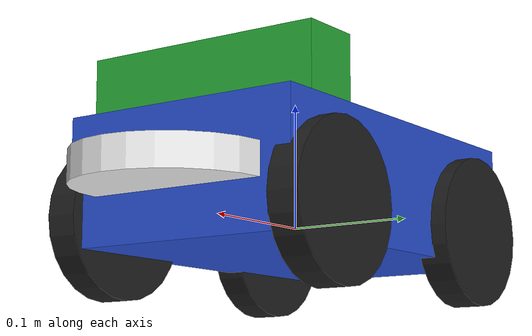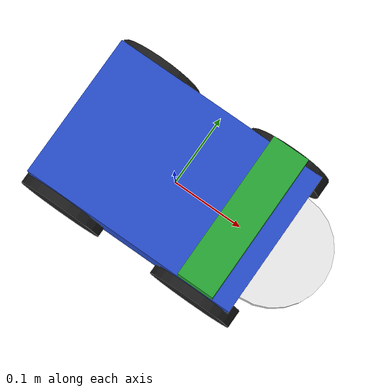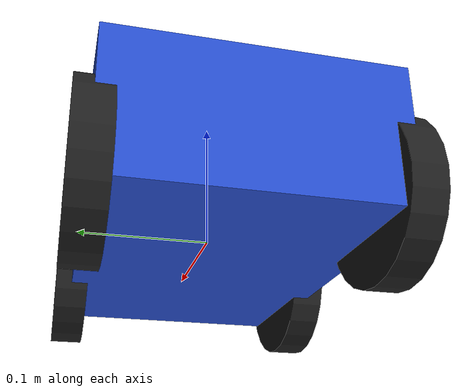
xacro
<?xml version="1.0"?>

<robot name="my_fancy_car" xmlns:xacro="http://www.ros.org/xacro">
  <xacro:include filename = "inertia.xacro"/>
  <xacro:include filename = "macros.xacro"/>
  <xacro:include filename = "gazebo_plugin.xacro"/>

    <!-- ************************ Base Link ******************************** -->
   <link name = "base_link">
    <pose>0 0 0.1 0 0 0</pose>
    <visual>
        <origin xyz="0 0 0.025" rpy="0 0 0" />
        <geometry>
            <box size = "0.3 0.2 0.1"/>
        </geometry>
    </visual>
    <collision>
      <geometry>
            <box size = "0.3 0.2 0.1"/>
        </geometry>
    </collision>
    <inertial>
      <origin xyz="0 0 0" rpy="0 0 0" />
      <mass value="1"/>
      <xacro:box_inertia mass="1" x="0.3" y="0.2" z="0.1" />
    </inertial>
  </link>
  <gazebo reference="base_link">
    	<turnGravityOff>false</turnGravityOff>
  </gazebo>
  <!-- ************************ Laseer Sensor ******************************** -->

 <link name="sensor_laser">
    <inertial>
      <origin xyz="0 0 0" rpy="0 0 0"/>
      <mass value="1"/>
      <xacro:cy_inertia mass="1" r="0.075" l="0.025" />
    </inertial>
    <visual>
      <origin xyz="0 0 0" rpy="0 0 0"/>
      <geometry>
        <cylinder radius="0.075" length="0.025"/>
      </geometry>
      <material name="white"/>
    </visual>
    <collision>
      <origin xyz="0 0 0" rpy="0 0 0"/>
      <geometry>
        <cylinder radius="0.075" length="0.025"/>
      </geometry>
    </collision>
  </link>

  <joint name="joint_sensor_laser" type="fixed">
     <origin xyz="0.15 0 0.025" rpy="0 0 0"/>
     <parent link="base_link"/>
     <child link="sensor_laser"/>

  </joint>
  <!-- ************************ Camera ******************************** -->
	<link name="camera">
	    <collision>
	    	<origin xyz="0 0 0" rpy="0 0 0"/>
	      	<geometry>
	    		<box size="0.1 0.2 0.2"/>
	      	</geometry>
	    </collision>

	    <visual>
	    	<origin xyz="0 0 0" rpy="0 0 0"/>
	      	<geometry>
	    		<box size="0.05 0.2 0.05"/>
	      	</geometry>
	      	<material name="crusta"/>
	    </visual>

		<inertial>
			<origin xyz="0 0 0" />
			<mass value="1"/>

      <xacro:box_inertia mass="1" x="0.05" y="0.2" z="0.2"/>

		</inertial>
	</link>

	<joint name="camera_joint" type="fixed">
	    <parent link="base_link"/>
	    <child link="camera"/>
	    <origin xyz="0.1 0 0.1" rpy="0 0 0"/>
	</joint>

  <!--Gazebo Camera Plugin-->
    <!-- ************************ Wheelz and Jointz ******************************** -->
  <xacro:wheelz name = "back_right_wheel_link"/>
  <xacro:jointz name = "base_to_right_wheel" child = "back_right_wheel_link" origin_xyz = "-0.1 -0.1 0.0"/>

  <xacro:wheelz name = "back_left_wheel_link"/>
  <xacro:jointz name = "back_to_left_wheel" child = "back_left_wheel_link" origin_xyz = "-0.1 0.1 0.0"/>

  <xacro:wheelz name = "front_right_wheel_link"/>
  <xacro:jointz name = "base_to_front_right_wheel" child = "front_right_wheel_link" origin_xyz = "0.1 -0.1 0.0"/>

  <xacro:wheelz name = "front_left_wheel_link"/>
  <xacro:jointz name = "base_to_front_left_wheel" child = "front_left_wheel_link" origin_xyz = "0.1 0.1 0.0"/>

</robot>

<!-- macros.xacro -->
<robot  xmlns:xacro="http://www.ros.org/xacro">
  <xacro:include filename = "inertia.xacro"/>
  <macro name = "wheelz" params = "name">
        <link name="${name}">
            <visual>
                <origin rpy="1.57079632679 0 0" xyz="0 0 0"/>
                <geometry>
                <cylinder length="0.025" radius="0.06"/>
                </geometry>
                <material name="Black"/>
            </visual>
            <collision>
                <origin rpy="0 1.507 1.507" xyz = "0 0 0"/>
                <geometry>
                    <cylinder length="0.025" radius="0.06"/>
                </geometry>
            </collision>
            <inertial>
                 <origin rpy="0 1.507 1.507" xyz = "0 0 0"/>
                <mass value="0.2"/>
                <xacro:cy_inertia mass="0.2" r="0.06" l="0.025" />
            </inertial>
        </link>
    </macro>

    <macro name="jointz" params="name child origin_xyz">
        <joint name="${name}" type="continuous">
            <axis xyz="0 1 0"/>
            <parent link="base_link"/>
            <child link="${child}"/>
            <origin rpy="0 0 0" xyz="${origin_xyz}"/>
        </joint>
    </macro>

</robot>
